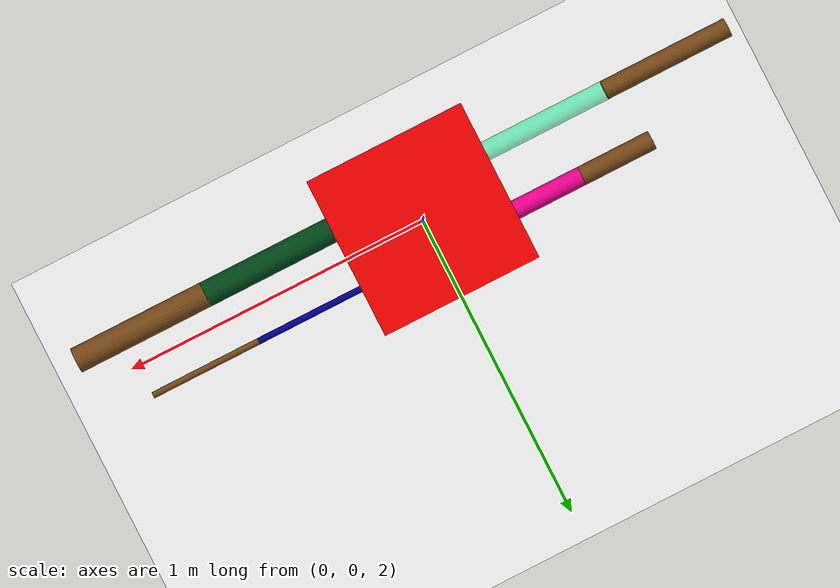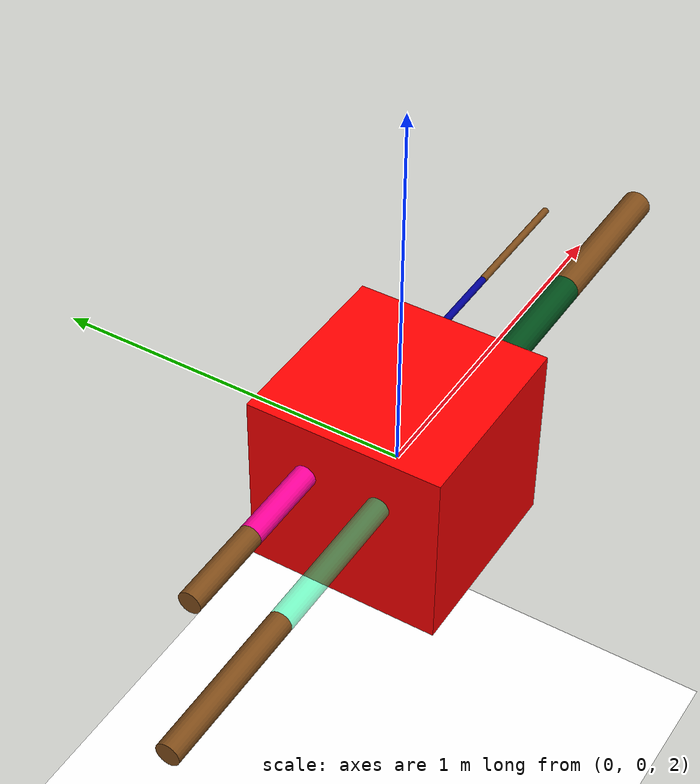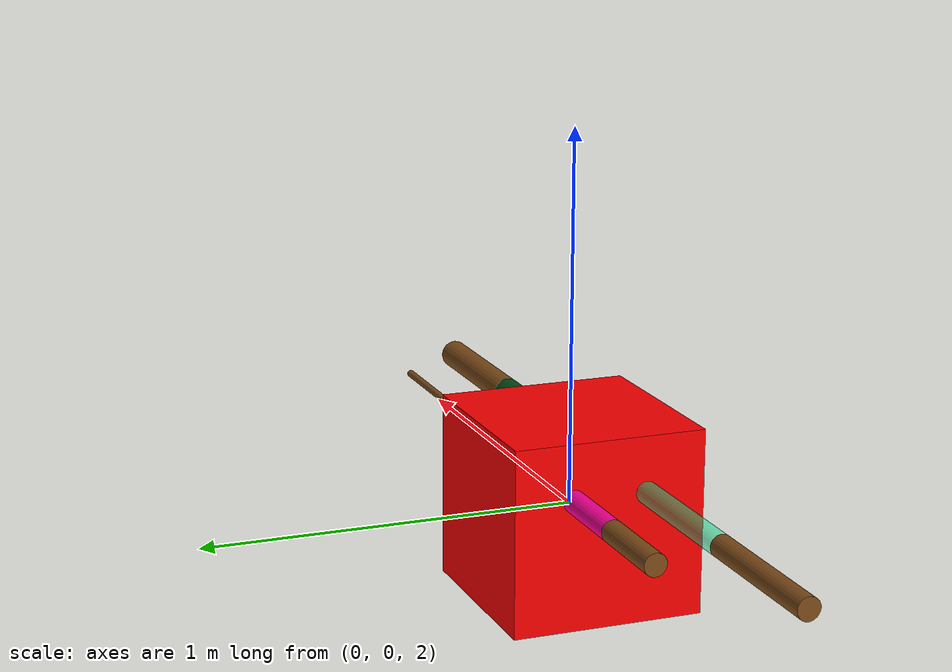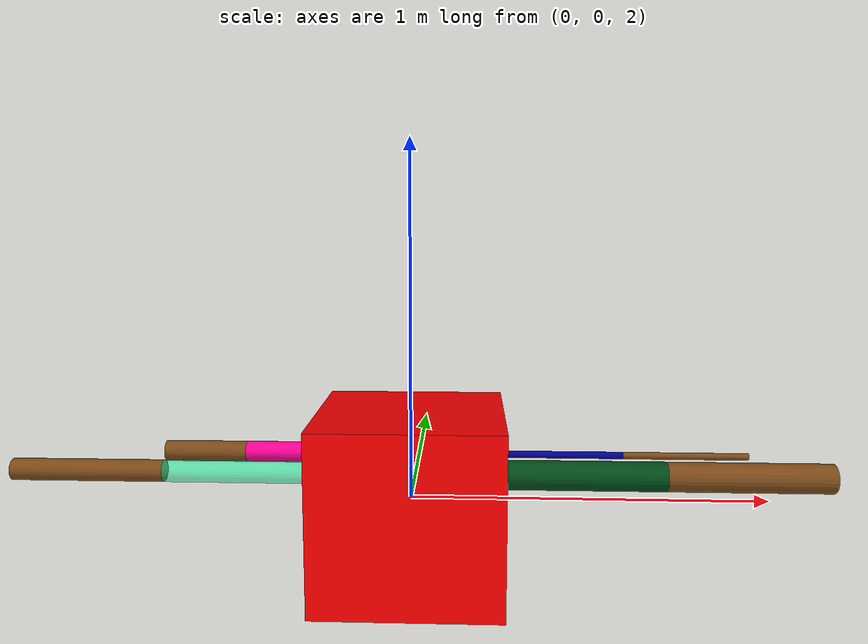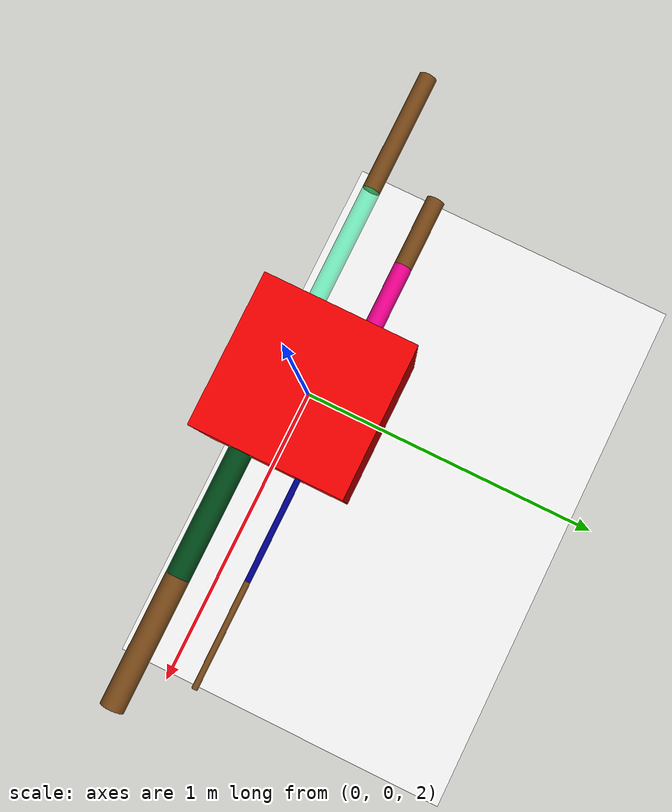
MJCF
<mujoco>
    <option gravity="0 0 -9.81" />
    <worldbody>
        <light diffuse="0.8 0.8 0.8" pos="0 0 8" dir="0 0 -1" />
        <geom type="plane" size="3 3 0.1" rgba="1 1 1 1" />

        <body name="main_body" pos="0 0 2">
            <joint name="main_body" type="free" />
            <geom type="box" size="0.25 0.26 0.26" rgba="1 0 0 1" euler="90 0 90" mass="15" />

            <body name="leg1" pos="-0.45999999999999996 -0.1 0.1" euler="0 90 0">
                <joint name="leg1-1" pos="0 0 0.21" type="hinge" axis="0 1 0" range="-45 45" />
                <geom type="cylinder" size="0.03 0.21" rgba="0 1 0.6 0.5" />
                <body name="shank1" pos="0 0 -0.42">
                    <joint name="leg1-2" pos="0 0 0.21" type="hinge" axis="0 1 0" range="-90 -70" />
                    <geom type="cylinder" size="0.03 0.21" rgba="0.5 0.3 0.1 1" />
                </body>
            </body>

            <body name="leg2" pos="-0.37 0.1 0.1" euler="0 90 0">
                <joint name="leg2-1" pos="0 0 0.12" type="hinge" axis="0 1 0" range="-45 45" />
                <geom type="cylinder" size="0.03 0.12" rgba="1 0 0.6 1" />
                <body name="shank2" pos="0 0 -0.24">
                    <joint name="leg2-2" pos="0 0 0.12" type="hinge" axis="0 1 0" range="-90 -70" />
                    <geom type="cylinder" size="0.03 0.12" rgba="0.5 0.3 0.1 1" />
                </body>
            </body>

            <body name="leg3" pos="0.47 -0.1 0.1" euler="0 -90 0">
                <joint name="leg3-1" pos="0 0 0.22" type="hinge" axis="0 1 0" range="-45 45" />
                <geom type="cylinder" size="0.04 0.22" rgba="0 0.3 0.1 1" />
                <body name="shank3" pos="0 0 -0.44">
                    <joint name="leg3-2" pos="0 0 0.22" type="hinge" axis="0 1 0" range="70 90" />
                    <geom type="cylinder" size="0.04 0.22" rgba="0.5 0.3 0.1 1" />
                </body>
            </body>

            <body name="leg4" pos="0.43 0.1 0.1" euler="0 -90 0">
                <joint name="leg4-1" pos="0 0 0.18" type="hinge" axis="0 1 0" range="-45 45" />
                <geom type="cylinder" size="0.01 0.18" rgba="0 0 0.6 1" />
                <body name="shank4" pos="0 0 -0.36">
                    <joint name="leg4-2" pos="0 0 0.18" type="hinge" axis="0 1 0" range="70 90" />
                    <geom type="cylinder" size="0.01 0.18" rgba="0.5 0.3 0.1 1" />
                </body>
            </body>
        </body>

    </worldbody>
    <actuator>
        <motor joint="leg1-1" name="fl1j" />
        <motor joint="leg1-2" name="fl2j" />
        <motor joint="leg3-1" name="bl1j" />
        <motor joint="leg3-2" name="bl2j" />
        <motor joint="leg2-1" name="fr1j" />
        <motor joint="leg2-2" name="fr2j" />
        <motor joint="leg4-1" name="br1j" />
        <motor joint="leg4-2" name="br2j" />
    </actuator>
</mujoco>
